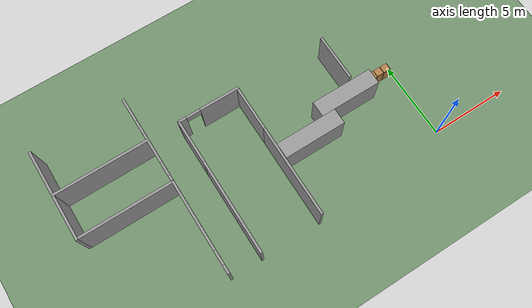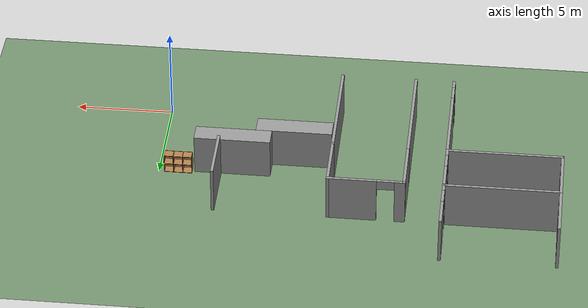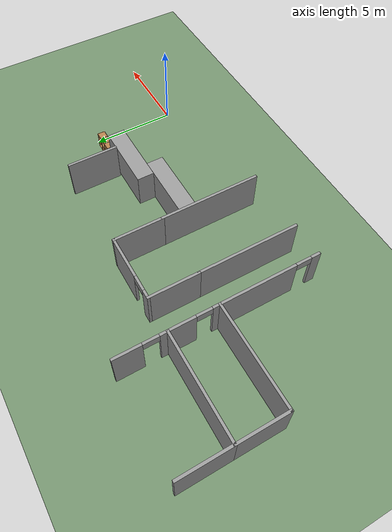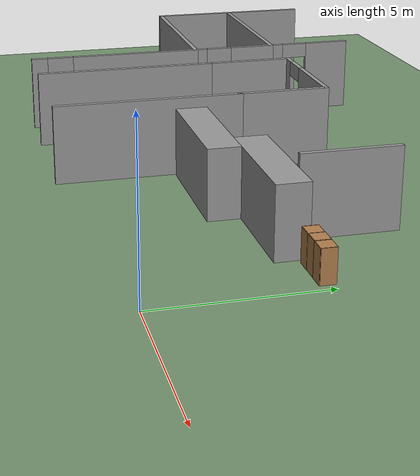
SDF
<sdf version="1.7">
 <world name="default">
  <model name="ground_plane">
   <static>1</static>
   <link name="link">
    <collision name="collision">
     <geometry><plane><normal>0 0 1</normal><size>600 600</size></plane></geometry>
     <surface>
      <contact><collide_bitmask>65535</collide_bitmask></contact>
      <friction><ode><mu>100</mu><mu2>50</mu2></ode></friction>
     </surface>
    </collision>
    <visual name="visual">
     <cast_shadows>0</cast_shadows>
     <geometry><plane><normal>0 0 1</normal><size>100 100</size></plane></geometry>
     <material><ambient>0.45 0.57 0.43 1</ambient><diffuse>0.45 0.57 0.43 1</diffuse></material>
    </visual>
   </link>
  </model>
  <model name="unit_box_clone_clone">
   <pose>-3.79883 4.41904 1.08892 -0 -0.000118 -0.002384</pose>
   <link name="link">
    <inertial>
     <mass>1</mass>
     <inertia>
      <ixx>0.166667</ixx>
      <ixy>0</ixy>
      <ixz>0</ixz>
      <iyy>0.166667</iyy>
      <iyz>0</iyz>
      <izz>0.166667</izz>
     </inertia>
    </inertial>
    <collision name="collision"><geometry><box><size>3.92499 1 2.1783</size></box></geometry></collision>
    <visual name="visual">
     <geometry><box><size>3.92499 1 2.1783</size></box></geometry>
     <material>
      <script><name>Gazebo/Grey</name><uri>file://media/materials/scripts/gazebo.material</uri></script>
     </material>
    </visual>
   </link>
  </model>
  <model name="unit_box_clone_clone_clone">
   <pose>-6.88792 3.42566 1.08892 0 0.000118 -0.002086</pose>
   <link name="link">
    <inertial>
     <mass>1</mass>
     <inertia>
      <ixx>0.166667</ixx>
      <ixy>0</ixy>
      <ixz>0</ixz>
      <iyy>0.166667</iyy>
      <iyz>0</iyz>
      <izz>0.166667</izz>
     </inertia>
    </inertial>
    <collision name="collision"><geometry><box><size>3.92499 1 2.1783</size></box></geometry></collision>
    <visual name="visual">
     <geometry><box><size>3.92499 1 2.1783</size></box></geometry>
     <material>
      <script><name>Gazebo/Grey</name><uri>file://media/materials/scripts/gazebo.material</uri></script>
     </material>
    </visual>
   </link>
  </model>
  <model name="myhal_V3_2">
   <link name="Wall_343">
    <pose>-20.475 7.2 0 0 0 -1.5708</pose>
    <visual name="Wall_343_Visual">
     <pose>0 0 1.25 0 -0 0</pose>
     <geometry><box><size>3 0.15 2.5</size></box></geometry>
     <material>
      <script><uri>file://media/materials/scripts/gazebo.material</uri><name>Gazebo/Grey</name></script>
      <ambient>1 1 1 1</ambient>
      <shader type="pixel"/>
     </material>
     <meta><layer>0</layer></meta>
    </visual>
    <collision name="Wall_343_Collision">
     <pose>0 0 1.25 0 -0 0</pose>
     <geometry><box><size>3 0.15 2.5</size></box></geometry>
     <surface>
      <friction>
       <ode><mu>1</mu><mu2>1</mu2><fdir1>0 0 0</fdir1><slip1>0</slip1><slip2>0</slip2></ode>
       <torsional>
        <coefficient>1</coefficient>
        <patch_radius>0</patch_radius>
        <surface_radius>0</surface_radius>
        <use_patch_radius>1</use_patch_radius>
        <ode><slip>0</slip></ode>
       </torsional>
      </friction>
      <bounce><restitution_coefficient>0</restitution_coefficient><threshold>1e+06</threshold></bounce>
      <contact>
       <collide_without_contact>0</collide_without_contact>
       <collide_without_contact_bitmask>1</collide_without_contact_bitmask>
       <collide_bitmask>1</collide_bitmask>
       <ode>
        <soft_cfm>0</soft_cfm>
        <soft_erp>0.2</soft_erp>
        <kp>1e+13</kp>
        <kd>1</kd>
        <max_vel>0.01</max_vel>
        <min_depth>0</min_depth>
       </ode>
       <bullet>
        <split_impulse>1</split_impulse>
        <split_impulse_penetration_threshold>-0.01</split_impulse_penetration_threshold>
        <soft_cfm>0</soft_cfm>
        <soft_erp>0.2</soft_erp>
        <kp>1e+13</kp>
        <kd>1</kd>
       </bullet>
      </contact>
     </surface>
    </collision>
   </link>
   <link name="Wall_344">
    <pose>-20.475 4.35 0 0 0 -1.5708</pose>
    <visual name="Wall_344_Visual">
     <pose>0 0 1.25 0 -0 0</pose>
     <geometry><box><size>3 0.15 2.5</size></box></geometry>
     <material>
      <script><uri>file://media/materials/scripts/gazebo.material</uri><name>Gazebo/Grey</name></script>
      <ambient>1 1 1 1</ambient>
      <shader type="pixel"/>
     </material>
     <meta><layer>0</layer></meta>
    </visual>
    <collision name="Wall_344_Collision">
     <pose>0 0 1.25 0 -0 0</pose>
     <geometry><box><size>3 0.15 2.5</size></box></geometry>
     <surface>
      <friction>
       <ode><mu>1</mu><mu2>1</mu2><fdir1>0 0 0</fdir1><slip1>0</slip1><slip2>0</slip2></ode>
       <torsional>
        <coefficient>1</coefficient>
        <patch_radius>0</patch_radius>
        <surface_radius>0</surface_radius>
        <use_patch_radius>1</use_patch_radius>
        <ode><slip>0</slip></ode>
       </torsional>
      </friction>
      <bounce><restitution_coefficient>0</restitution_coefficient><threshold>1e+06</threshold></bounce>
      <contact>
       <collide_without_contact>0</collide_without_contact>
       <collide_without_contact_bitmask>1</collide_without_contact_bitmask>
       <collide_bitmask>1</collide_bitmask>
       <ode>
        <soft_cfm>0</soft_cfm>
        <soft_erp>0.2</soft_erp>
        <kp>1e+13</kp>
        <kd>1</kd>
        <max_vel>0.01</max_vel>
        <min_depth>0</min_depth>
       </ode>
       <bullet>
        <split_impulse>1</split_impulse>
        <split_impulse_penetration_threshold>-0.01</split_impulse_penetration_threshold>
        <soft_cfm>0</soft_cfm>
        <soft_erp>0.2</soft_erp>
        <kp>1e+13</kp>
        <kd>1</kd>
       </bullet>
      </contact>
     </surface>
    </collision>
   </link>
   <link name="Wall_402">
    <pose>-14.625 7.2 0 0 0 -1.5708</pose>
    <visual name="Wall_402_Visual_0">
     <pose>-0.707028 0 1.25 0 -0 0</pose>
     <geometry><box><size>1.58594 0.15 2.5</size></box></geometry>
     <material>
      <script><uri>file://media/materials/scripts/gazebo.material</uri><name>Gazebo/Grey</name></script>
      <ambient>1 1 1 1</ambient>
      <shader type="pixel"/>
     </material>
     <meta><layer>0</layer></meta>
    </visual>
    <visual name="Wall_402_Visual_1">
     <pose>1.24297 0 1.25 0 -0 0</pose>
     <geometry><box><size>0.514056 0.15 2.5</size></box></geometry>
     <material>
      <script><uri>file://media/materials/scripts/gazebo.material</uri><name>Gazebo/Grey</name></script>
      <ambient>1 1 1 1</ambient>
      <shader type="pixel"/>
     </material>
     <meta><layer>0</layer></meta>
    </visual>
    <visual name="Wall_402_Visual_2">
     <pose>0.535944 0 2.25 0 -0 0</pose>
     <geometry><box><size>0.9 0.15 0.5</size></box></geometry>
     <material>
      <script><uri>file://media/materials/scripts/gazebo.material</uri><name>Gazebo/Grey</name></script>
      <ambient>1 1 1 1</ambient>
      <shader type="pixel"/>
     </material>
     <meta><layer>0</layer></meta>
    </visual>
    <collision name="Wall_402_Collision_0">
     <pose>-0.707028 0 1.25 0 -0 0</pose>
     <geometry><box><size>1.58594 0.15 2.5</size></box></geometry>
     <surface>
      <friction>
       <ode><mu>1</mu><mu2>1</mu2><fdir1>0 0 0</fdir1><slip1>0</slip1><slip2>0</slip2></ode>
       <torsional>
        <coefficient>1</coefficient>
        <patch_radius>0</patch_radius>
        <surface_radius>0</surface_radius>
        <use_patch_radius>1</use_patch_radius>
        <ode><slip>0</slip></ode>
       </torsional>
      </friction>
      <bounce><restitution_coefficient>0</restitution_coefficient><threshold>1e+06</threshold></bounce>
      <contact>
       <collide_without_contact>0</collide_without_contact>
       <collide_without_contact_bitmask>1</collide_without_contact_bitmask>
       <collide_bitmask>1</collide_bitmask>
       <ode>
        <soft_cfm>0</soft_cfm>
        <soft_erp>0.2</soft_erp>
        <kp>1e+13</kp>
        <kd>1</kd>
        <max_vel>0.01</max_vel>
        <min_depth>0</min_depth>
       </ode>
       <bullet>
        <split_impulse>1</split_impulse>
        <split_impulse_penetration_threshold>-0.01</split_impulse_penetration_threshold>
        <soft_cfm>0</soft_cfm>
        <soft_erp>0.2</soft_erp>
        <kp>1e+13</kp>
        <kd>1</kd>
       </bullet>
      </contact>
     </surface>
    </collision>
    <collision name="Wall_402_Collision_1">
     <pose>1.24297 0 1.25 0 -0 0</pose>
     <geometry><box><size>0.514056 0.15 2.5</size></box></geometry>
     <surface>
      <friction>
       <ode><mu>1</mu><mu2>1</mu2><fdir1>0 0 0</fdir1><slip1>0</slip1><slip2>0</slip2></ode>
       <torsional>
        <coefficient>1</coefficient>
        <patch_radius>0</patch_radius>
        <surface_radius>0</surface_radius>
        <use_patch_radius>1</use_patch_radius>
        <ode><slip>0</slip></ode>
       </torsional>
      </friction>
      <bounce><restitution_coefficient>0</restitution_coefficient><threshold>1e+06</threshold></bounce>
      <contact>
       <collide_without_contact>0</collide_without_contact>
       <collide_without_contact_bitmask>1</collide_without_contact_bitmask>
       <collide_bitmask>1</collide_bitmask>
       <ode>
        <soft_cfm>0</soft_cfm>
        <soft_erp>0.2</soft_erp>
        <kp>1e+13</kp>
        <kd>1</kd>
        <max_vel>0.01</max_vel>
        <min_depth>0</min_depth>
       </ode>
       <bullet>
        <split_impulse>1</split_impulse>
        <split_impulse_penetration_threshold>-0.01</split_impulse_penetration_threshold>
        <soft_cfm>0</soft_cfm>
        <soft_erp>0.2</soft_erp>
        <kp>1e+13</kp>
        <kd>1</kd>
       </bullet>
      </contact>
     </surface>
    </collision>
    <collision name="Wall_402_Collision_2">
     <pose>0.535944 0 2.25 0 -0 0</pose>
     <geometry><box><size>0.9 0.15 0.5</size></box></geometry>
     <surface>
      <friction>
       <ode><mu>1</mu><mu2>1</mu2><fdir1>0 0 0</fdir1><slip1>0</slip1><slip2>0</slip2></ode>
       <torsional>
        <coefficient>1</coefficient>
        <patch_radius>0</patch_radius>
        <surface_radius>0</surface_radius>
        <use_patch_radius>1</use_patch_radius>
        <ode><slip>0</slip></ode>
       </torsional>
      </friction>
      <bounce><restitution_coefficient>0</restitution_coefficient><threshold>1e+06</threshold></bounce>
      <contact>
       <collide_without_contact>0</collide_without_contact>
       <collide_without_contact_bitmask>1</collide_without_contact_bitmask>
       <collide_bitmask>1</collide_bitmask>
       <ode>
        <soft_cfm>0</soft_cfm>
        <soft_erp>0.2</soft_erp>
        <kp>1e+13</kp>
        <kd>1</kd>
        <max_vel>0.01</max_vel>
        <min_depth>0</min_depth>
       </ode>
       <bullet>
        <split_impulse>1</split_impulse>
        <split_impulse_penetration_threshold>-0.01</split_impulse_penetration_threshold>
        <soft_cfm>0</soft_cfm>
        <soft_erp>0.2</soft_erp>
        <kp>1e+13</kp>
        <kd>1</kd>
       </bullet>
      </contact>
     </surface>
    </collision>
   </link>
   <link name="Wall_403">
    <pose>-17.55 5.775 0 0 -0 3.14159</pose>
    <visual name="Wall_403_Visual">
     <pose>0 0 1.25 0 -0 0</pose>
     <geometry><box><size>6 0.15 2.5</size></box></geometry>
     <material>
      <script><uri>file://media/materials/scripts/gazebo.material</uri><name>Gazebo/Grey</name></script>
      <ambient>1 1 1 1</ambient>
      <shader type="pixel"/>
     </material>
     <meta><layer>0</layer></meta>
    </visual>
    <collision name="Wall_403_Collision">
     <pose>0 0 1.25 0 -0 0</pose>
     <geometry><box><size>6 0.15 2.5</size></box></geometry>
     <surface>
      <friction>
       <ode><mu>1</mu><mu2>1</mu2><fdir1>0 0 0</fdir1><slip1>0</slip1><slip2>0</slip2></ode>
       <torsional>
        <coefficient>1</coefficient>
        <patch_radius>0</patch_radius>
        <surface_radius>0</surface_radius>
        <use_patch_radius>1</use_patch_radius>
        <ode><slip>0</slip></ode>
       </torsional>
      </friction>
      <bounce><restitution_coefficient>0</restitution_coefficient><threshold>1e+06</threshold></bounce>
      <contact>
       <collide_without_contact>0</collide_without_contact>
       <collide_without_contact_bitmask>1</collide_without_contact_bitmask>
       <collide_bitmask>1</collide_bitmask>
       <ode>
        <soft_cfm>0</soft_cfm>
        <soft_erp>0.2</soft_erp>
        <kp>1e+13</kp>
        <kd>1</kd>
        <max_vel>0.01</max_vel>
        <min_depth>0</min_depth>
       </ode>
       <bullet>
        <split_impulse>1</split_impulse>
        <split_impulse_penetration_threshold>-0.01</split_impulse_penetration_threshold>
        <soft_cfm>0</soft_cfm>
        <soft_erp>0.2</soft_erp>
        <kp>1e+13</kp>
        <kd>1</kd>
       </bullet>
      </contact>
     </surface>
    </collision>
   </link>
   <link name="Wall_405">
    <pose>-14.625 4.35 0 0 0 -1.5708</pose>
    <visual name="Wall_405_Visual_0">
     <pose>-0.698064 0 1.25 0 -0 0</pose>
     <geometry><box><size>1.60387 0.15 2.5</size></box></geometry>
     <material>
      <script><uri>file://media/materials/scripts/gazebo.material</uri><name>Gazebo/Grey</name></script>
      <ambient>1 1 1 1</ambient>
      <shader type="pixel"/>
     </material>
     <meta><layer>0</layer></meta>
    </visual>
    <visual name="Wall_405_Visual_1">
     <pose>1.25194 0 1.25 0 -0 0</pose>
     <geometry><box><size>0.496128 0.15 2.5</size></box></geometry>
     <material>
      <script><uri>file://media/materials/scripts/gazebo.material</uri><name>Gazebo/Grey</name></script>
      <ambient>1 1 1 1</ambient>
      <shader type="pixel"/>
     </material>
     <meta><layer>0</layer></meta>
    </visual>
    <visual name="Wall_405_Visual_2">
     <pose>0.553872 0 2.25 0 -0 0</pose>
     <geometry><box><size>0.9 0.15 0.5</size></box></geometry>
     <material>
      <script><uri>file://media/materials/scripts/gazebo.material</uri><name>Gazebo/Grey</name></script>
      <ambient>1 1 1 1</ambient>
      <shader type="pixel"/>
     </material>
     <meta><layer>0</layer></meta>
    </visual>
    <collision name="Wall_405_Collision_0">
     <pose>-0.698064 0 1.25 0 -0 0</pose>
     <geometry><box><size>1.60387 0.15 2.5</size></box></geometry>
     <surface>
      <friction>
       <ode><mu>1</mu><mu2>1</mu2><fdir1>0 0 0</fdir1><slip1>0</slip1><slip2>0</slip2></ode>
       <torsional>
        <coefficient>1</coefficient>
        <patch_radius>0</patch_radius>
        <surface_radius>0</surface_radius>
        <use_patch_radius>1</use_patch_radius>
        <ode><slip>0</slip></ode>
       </torsional>
      </friction>
      <bounce><restitution_coefficient>0</restitution_coefficient><threshold>1e+06</threshold></bounce>
      <contact>
       <collide_without_contact>0</collide_without_contact>
       <collide_without_contact_bitmask>1</collide_without_contact_bitmask>
       <collide_bitmask>1</collide_bitmask>
       <ode>
        <soft_cfm>0</soft_cfm>
        <soft_erp>0.2</soft_erp>
        <kp>1e+13</kp>
        <kd>1</kd>
        <max_vel>0.01</max_vel>
        <min_depth>0</min_depth>
       </ode>
       <bullet>
        <split_impulse>1</split_impulse>
        <split_impulse_penetration_threshold>-0.01</split_impulse_penetration_threshold>
        <soft_cfm>0</soft_cfm>
        <soft_erp>0.2</soft_erp>
        <kp>1e+13</kp>
        <kd>1</kd>
       </bullet>
      </contact>
     </surface>
    </collision>
    <collision name="Wall_405_Collision_1">
     <pose>1.25194 0 1.25 0 -0 0</pose>
     <geometry><box><size>0.496128 0.15 2.5</size></box></geometry>
     <surface>
      <friction>
       <ode><mu>1</mu><mu2>1</mu2><fdir1>0 0 0</fdir1><slip1>0</slip1><slip2>0</slip2></ode>
       <torsional>
        <coefficient>1</coefficient>
        <patch_radius>0</patch_radius>
        <surface_radius>0</surface_radius>
        <use_patch_radius>1</use_patch_radius>
        <ode><slip>0</slip></ode>
       </torsional>
      </friction>
      <bounce><restitution_coefficient>0</restitution_coefficient><threshold>1e+06</threshold></bounce>
      <contact>
       <collide_without_contact>0</collide_without_contact>
       <collide_without_contact_bitmask>1</collide_without_contact_bitmask>
       <collide_bitmask>1</collide_bitmask>
       <ode>
        <soft_cfm>0</soft_cfm>
        <soft_erp>0.2</soft_erp>
        <kp>1e+13</kp>
        <kd>1</kd>
        <max_vel>0.01</max_vel>
        <min_depth>0</min_depth>
       </ode>
       <bullet>
        <split_impulse>1</split_impulse>
        <split_impulse_penetration_threshold>-0.01</split_impulse_penetration_threshold>
        <soft_cfm>0</soft_cfm>
        <soft_erp>0.2</soft_erp>
        <kp>1e+13</kp>
        <kd>1</kd>
       </bullet>
      </contact>
     </surface>
    </collision>
    <collision name="Wall_405_Collision_2">
     <pose>0.553872 0 2.25 0 -0 0</pose>
     <geometry><box><size>0.9 0.15 0.5</size></box></geometry>
     <surface>
      <friction>
       <ode><mu>1</mu><mu2>1</mu2><fdir1>0 0 0</fdir1><slip1>0</slip1><slip2>0</slip2></ode>
       <torsional>
        <coefficient>1</coefficient>
        <patch_radius>0</patch_radius>
        <surface_radius>0</surface_radius>
        <use_patch_radius>1</use_patch_radius>
        <ode><slip>0</slip></ode>
       </torsional>
      </friction>
      <bounce><restitution_coefficient>0</restitution_coefficient><threshold>1e+06</threshold></bounce>
      <contact>
       <collide_without_contact>0</collide_without_contact>
       <collide_without_contact_bitmask>1</collide_without_contact_bitmask>
       <collide_bitmask>1</collide_bitmask>
       <ode>
        <soft_cfm>0</soft_cfm>
        <soft_erp>0.2</soft_erp>
        <kp>1e+13</kp>
        <kd>1</kd>
        <max_vel>0.01</max_vel>
        <min_depth>0</min_depth>
       </ode>
       <bullet>
        <split_impulse>1</split_impulse>
        <split_impulse_penetration_threshold>-0.01</split_impulse_penetration_threshold>
        <soft_cfm>0</soft_cfm>
        <soft_erp>0.2</soft_erp>
        <kp>1e+13</kp>
        <kd>1</kd>
       </bullet>
      </contact>
     </surface>
    </collision>
   </link>
   <link name="Wall_406">
    <pose>-17.55 2.925 0 0 -0 3.14159</pose>
    <visual name="Wall_406_Visual">
     <pose>0 0 1.25 0 -0 0</pose>
     <geometry><box><size>6 0.15 2.5</size></box></geometry>
     <material>
      <script><uri>file://media/materials/scripts/gazebo.material</uri><name>Gazebo/Grey</name></script>
      <ambient>1 1 1 1</ambient>
      <shader type="pixel"/>
     </material>
     <meta><layer>0</layer></meta>
    </visual>
    <collision name="Wall_406_Collision">
     <pose>0 0 1.25 0 -0 0</pose>
     <geometry><box><size>6 0.15 2.5</size></box></geometry>
     <surface>
      <friction>
       <ode><mu>1</mu><mu2>1</mu2><fdir1>0 0 0</fdir1><slip1>0</slip1><slip2>0</slip2></ode>
       <torsional>
        <coefficient>1</coefficient>
        <patch_radius>0</patch_radius>
        <surface_radius>0</surface_radius>
        <use_patch_radius>1</use_patch_radius>
        <ode><slip>0</slip></ode>
       </torsional>
      </friction>
      <bounce><restitution_coefficient>0</restitution_coefficient><threshold>1e+06</threshold></bounce>
      <contact>
       <collide_without_contact>0</collide_without_contact>
       <collide_without_contact_bitmask>1</collide_without_contact_bitmask>
       <collide_bitmask>1</collide_bitmask>
       <ode>
        <soft_cfm>0</soft_cfm>
        <soft_erp>0.2</soft_erp>
        <kp>1e+13</kp>
        <kd>1</kd>
        <max_vel>0.01</max_vel>
        <min_depth>0</min_depth>
       </ode>
       <bullet>
        <split_impulse>1</split_impulse>
        <split_impulse_penetration_threshold>-0.01</split_impulse_penetration_threshold>
        <soft_cfm>0</soft_cfm>
        <soft_erp>0.2</soft_erp>
        <kp>1e+13</kp>
        <kd>1</kd>
       </bullet>
      </contact>
     </surface>
    </collision>
   </link>
   <link name="Wall_408">
    <pose>-14.625 0 0 0 0 -1.5708</pose>
    <visual name="Wall_408_Visual_0">
     <pose>-0.728079 0 1.25 0 -0 0</pose>
     <geometry><box><size>4.54384 0.15 2.5</size></box></geometry>
     <material>
      <script><uri>file://media/materials/scripts/gazebo.material</uri><name>Gazebo/Grey</name></script>
      <ambient>1 1 1 1</ambient>
      <shader type="pixel"/>
     </material>
     <meta><layer>0</layer></meta>
    </visual>
    <visual name="Wall_408_Visual_1">
     <pose>2.72192 0 1.25 0 -0 0</pose>
     <geometry><box><size>0.556159 0.15 2.5</size></box></geometry>
     <material>
      <script><uri>file://media/materials/scripts/gazebo.material</uri><name>Gazebo/Grey</name></script>
      <ambient>1 1 1 1</ambient>
      <shader type="pixel"/>
     </material>
     <meta><layer>0</layer></meta>
    </visual>
    <visual name="Wall_408_Visual_2">
     <pose>1.99384 0 2.25 0 -0 0</pose>
     <geometry><box><size>0.9 0.15 0.5</size></box></geometry>
     <material>
      <script><uri>file://media/materials/scripts/gazebo.material</uri><name>Gazebo/Grey</name></script>
      <ambient>1 1 1 1</ambient>
      <shader type="pixel"/>
     </material>
     <meta><layer>0</layer></meta>
    </visual>
    <collision name="Wall_408_Collision_0">
     <pose>-0.728079 0 1.25 0 -0 0</pose>
     <geometry><box><size>4.54384 0.15 2.5</size></box></geometry>
     <surface>
      <friction>
       <ode><mu>1</mu><mu2>1</mu2><fdir1>0 0 0</fdir1><slip1>0</slip1><slip2>0</slip2></ode>
       <torsional>
        <coefficient>1</coefficient>
        <patch_radius>0</patch_radius>
        <surface_radius>0</surface_radius>
        <use_patch_radius>1</use_patch_radius>
        <ode><slip>0</slip></ode>
       </torsional>
      </friction>
      <bounce><restitution_coefficient>0</restitution_coefficient><threshold>1e+06</threshold></bounce>
      <contact>
       <collide_without_contact>0</collide_without_contact>
       <collide_without_contact_bitmask>1</collide_without_contact_bitmask>
       <collide_bitmask>1</collide_bitmask>
       <ode>
        <soft_cfm>0</soft_cfm>
        <soft_erp>0.2</soft_erp>
        <kp>1e+13</kp>
        <kd>1</kd>
        <max_vel>0.01</max_vel>
        <min_depth>0</min_depth>
       </ode>
       <bullet>
        <split_impulse>1</split_impulse>
        <split_impulse_penetration_threshold>-0.01</split_impulse_penetration_threshold>
        <soft_cfm>0</soft_cfm>
        <soft_erp>0.2</soft_erp>
        <kp>1e+13</kp>
        <kd>1</kd>
       </bullet>
      </contact>
     </surface>
    </collision>
    <collision name="Wall_408_Collision_1">
     <pose>2.72192 0 1.25 0 -0 0</pose>
     <geometry><box><size>0.556159 0.15 2.5</size></box></geometry>
     <surface>
      <friction>
       <ode><mu>1</mu><mu2>1</mu2><fdir1>0 0 0</fdir1><slip1>0</slip1><slip2>0</slip2></ode>
       <torsional>
        <coefficient>1</coefficient>
        <patch_radius>0</patch_radius>
        <surface_radius>0</surface_radius>
        <use_patch_radius>1</use_patch_radius>
        <ode><slip>0</slip></ode>
       </torsional>
      </friction>
      <bounce><restitution_coefficient>0</restitution_coefficient><threshold>1e+06</threshold></bounce>
      <contact>
       <collide_without_contact>0</collide_without_contact>
       <collide_without_contact_bitmask>1</collide_without_contact_bitmask>
       <collide_bitmask>1</collide_bitmask>
       <ode>
        <soft_cfm>0</soft_cfm>
        <soft_erp>0.2</soft_erp>
        <kp>1e+13</kp>
        <kd>1</kd>
        <max_vel>0.01</max_vel>
        <min_depth>0</min_depth>
       </ode>
       <bullet>
        <split_impulse>1</split_impulse>
        <split_impulse_penetration_threshold>-0.01</split_impulse_penetration_threshold>
        <soft_cfm>0</soft_cfm>
        <soft_erp>0.2</soft_erp>
        <kp>1e+13</kp>
        <kd>1</kd>
       </bullet>
      </contact>
     </surface>
    </collision>
    <collision name="Wall_408_Collision_2">
     <pose>1.99384 0 2.25 0 -0 0</pose>
     <geometry><box><size>0.9 0.15 0.5</size></box></geometry>
     <surface>
      <friction>
       <ode><mu>1</mu><mu2>1</mu2><fdir1>0 0 0</fdir1><slip1>0</slip1><slip2>0</slip2></ode>
       <torsional>
        <coefficient>1</coefficient>
        <patch_radius>0</patch_radius>
        <surface_radius>0</surface_radius>
        <use_patch_radius>1</use_patch_radius>
        <ode><slip>0</slip></ode>
       </torsional>
      </friction>
      <bounce><restitution_coefficient>0</restitution_coefficient><threshold>1e+06</threshold></bounce>
      <contact>
       <collide_without_contact>0</collide_without_contact>
       <collide_without_contact_bitmask>1</collide_without_contact_bitmask>
       <collide_bitmask>1</collide_bitmask>
       <ode>
        <soft_cfm>0</soft_cfm>
        <soft_erp>0.2</soft_erp>
        <kp>1e+13</kp>
        <kd>1</kd>
        <max_vel>0.01</max_vel>
        <min_depth>0</min_depth>
       </ode>
       <bullet>
        <split_impulse>1</split_impulse>
        <split_impulse_penetration_threshold>-0.01</split_impulse_penetration_threshold>
        <soft_cfm>0</soft_cfm>
        <soft_erp>0.2</soft_erp>
        <kp>1e+13</kp>
        <kd>1</kd>
       </bullet>
      </contact>
     </surface>
    </collision>
   </link>
   <link name="Wall_439">
    <pose>-10.7 5.775 0 0 -0 3.14159</pose>
    <visual name="Wall_439_Visual_0">
     <pose>-0.724975 0 1.25 0 -0 0</pose>
     <geometry><box><size>2.55005 0.15 2.5</size></box></geometry>
     <material>
      <script><uri>file://media/materials/scripts/gazebo.material</uri><name>Gazebo/Grey</name></script>
      <ambient>1 1 1 1</ambient>
      <shader type="pixel"/>
     </material>
     <meta><layer>0</layer></meta>
    </visual>
    <visual name="Wall_439_Visual_1">
     <pose>1.72503 0 1.25 0 -0 0</pose>
     <geometry><box><size>0.549949 0.15 2.5</size></box></geometry>
     <material>
      <script><uri>file://media/materials/scripts/gazebo.material</uri><name>Gazebo/Grey</name></script>
      <ambient>1 1 1 1</ambient>
      <shader type="pixel"/>
     </material>
     <meta><layer>0</layer></meta>
    </visual>
    <visual name="Wall_439_Visual_2">
     <pose>1.00005 0 2.25 0 -0 0</pose>
     <geometry><box><size>0.9 0.15 0.5</size></box></geometry>
     <material>
      <script><uri>file://media/materials/scripts/gazebo.material</uri><name>Gazebo/Grey</name></script>
      <ambient>1 1 1 1</ambient>
      <shader type="pixel"/>
     </material>
     <meta><layer>0</layer></meta>
    </visual>
    <collision name="Wall_439_Collision_0">
     <pose>-0.724975 0 1.25 0 -0 0</pose>
     <geometry><box><size>2.55005 0.15 2.5</size></box></geometry>
     <surface>
      <friction>
       <ode><mu>1</mu><mu2>1</mu2><fdir1>0 0 0</fdir1><slip1>0</slip1><slip2>0</slip2></ode>
       <torsional>
        <coefficient>1</coefficient>
        <patch_radius>0</patch_radius>
        <surface_radius>0</surface_radius>
        <use_patch_radius>1</use_patch_radius>
        <ode><slip>0</slip></ode>
       </torsional>
      </friction>
      <bounce><restitution_coefficient>0</restitution_coefficient><threshold>1e+06</threshold></bounce>
      <contact>
       <collide_without_contact>0</collide_without_contact>
       <collide_without_contact_bitmask>1</collide_without_contact_bitmask>
       <collide_bitmask>1</collide_bitmask>
       <ode>
        <soft_cfm>0</soft_cfm>
        <soft_erp>0.2</soft_erp>
        <kp>1e+13</kp>
        <kd>1</kd>
        <max_vel>0.01</max_vel>
        <min_depth>0</min_depth>
       </ode>
       <bullet>
        <split_impulse>1</split_impulse>
        <split_impulse_penetration_threshold>-0.01</split_impulse_penetration_threshold>
        <soft_cfm>0</soft_cfm>
        <soft_erp>0.2</soft_erp>
        <kp>1e+13</kp>
        <kd>1</kd>
       </bullet>
      </contact>
     </surface>
    </collision>
    <collision name="Wall_439_Collision_2">
     <pose>1.00005 0 2.25 0 -0 0</pose>
     <geometry><box><size>0.9 0.15 0.5</size></box></geometry>
     <surface>
      <friction>
       <ode><mu>1</mu><mu2>1</mu2><fdir1>0 0 0</fdir1><slip1>0</slip1><slip2>0</slip2></ode>
       <torsional>
        <coefficient>1</coefficient>
        <patch_radius>0</patch_radius>
        <surface_radius>0</surface_radius>
        <use_patch_radius>1</use_patch_radius>
        <ode><slip>0</slip></ode>
       </torsional>
      </friction>
      <bounce><restitution_coefficient>0</restitution_coefficient><threshold>1e+06</threshold></bounce>
      <contact>
       <collide_without_contact>0</collide_without_contact>
       <collide_without_contact_bitmask>1</collide_without_contact_bitmask>
       <collide_bitmask>1</collide_bitmask>
       <ode>
        <soft_cfm>0</soft_cfm>
        <soft_erp>0.2</soft_erp>
        <kp>1e+13</kp>
        <kd>1</kd>
        <max_vel>0.01</max_vel>
        <min_depth>0</min_depth>
       </ode>
       <bullet>
        <split_impulse>1</split_impulse>
        <split_impulse_penetration_threshold>-0.01</split_impulse_penetration_threshold>
        <soft_cfm>0</soft_cfm>
        <soft_erp>0.2</soft_erp>
        <kp>1e+13</kp>
        <kd>1</kd>
       </bullet>
      </contact>
     </surface>
    </collision>
    <collision name="Wall_439_Collision_1">
     <pose>1.72503 0 1.25 0 -0 0</pose>
     <geometry><box><size>0.549949 0.15 2.5</size></box></geometry>
     <surface>
      <friction>
       <ode><mu>1</mu><mu2>1</mu2><fdir1>0 0 0</fdir1><slip1>0</slip1><slip2>0</slip2></ode>
       <torsional>
        <coefficient>1</coefficient>
        <patch_radius>0</patch_radius>
        <surface_radius>0</surface_radius>
        <use_patch_radius>1</use_patch_radius>
        <ode><slip>0</slip></ode>
       </torsional>
      </friction>
      <bounce><restitution_coefficient>0</restitution_coefficient><threshold>1e+06</threshold></bounce>
      <contact>
       <collide_without_contact>0</collide_without_contact>
       <collide_without_contact_bitmask>1</collide_without_contact_bitmask>
       <collide_bitmask>1</collide_bitmask>
       <ode>
        <soft_cfm>0</soft_cfm>
        <soft_erp>0.2</soft_erp>
        <kp>1e+13</kp>
        <kd>1</kd>
        <max_vel>0.01</max_vel>
        <min_depth>0</min_depth>
       </ode>
       <bullet>
        <split_impulse>1</split_impulse>
        <split_impulse_penetration_threshold>-0.01</split_impulse_penetration_threshold>
        <soft_cfm>0</soft_cfm>
        <soft_erp>0.2</soft_erp>
        <kp>1e+13</kp>
        <kd>1</kd>
       </bullet>
      </contact>
     </surface>
    </collision>
   </link>
   <link name="Wall_441">
    <pose>-12.625 4.35 0 0 0 -1.5708</pose>
    <visual name="Wall_441_Visual">
     <pose>0 0 1.25 0 -0 0</pose>
     <geometry><box><size>3 0.15 2.5</size></box></geometry>
     <material>
      <script><uri>file://media/materials/scripts/gazebo.material</uri><name>Gazebo/Grey</name></script>
      <ambient>1 1 1 1</ambient>
      <shader type="pixel"/>
     </material>
     <meta><layer>0</layer></meta>
    </visual>
    <collision name="Wall_441_Collision">
     <pose>0 0 1.25 0 -0 0</pose>
     <geometry><box><size>3 0.15 2.5</size></box></geometry>
     <surface>
      <friction>
       <ode><mu>1</mu><mu2>1</mu2><fdir1>0 0 0</fdir1><slip1>0</slip1><slip2>0</slip2></ode>
       <torsional>
        <coefficient>1</coefficient>
        <patch_radius>0</patch_radius>
        <surface_radius>0</surface_radius>
        <use_patch_radius>1</use_patch_radius>
        <ode><slip>0</slip></ode>
       </torsional>
      </friction>
      <bounce><restitution_coefficient>0</restitution_coefficient><threshold>1e+06</threshold></bounce>
      <contact>
       <collide_without_contact>0</collide_without_contact>
       <collide_without_contact_bitmask>1</collide_without_contact_bitmask>
       <collide_bitmask>1</collide_bitmask>
       <ode>
        <soft_cfm>0</soft_cfm>
        <soft_erp>0.2</soft_erp>
        <kp>1e+13</kp>
        <kd>1</kd>
        <max_vel>0.01</max_vel>
        <min_depth>0</min_depth>
       </ode>
       <bullet>
        <split_impulse>1</split_impulse>
        <split_impulse_penetration_threshold>-0.01</split_impulse_penetration_threshold>
        <soft_cfm>0</soft_cfm>
        <soft_erp>0.2</soft_erp>
        <kp>1e+13</kp>
        <kd>1</kd>
       </bullet>
      </contact>
     </surface>
    </collision>
   </link>
   <link name="Wall_442">
    <pose>-12.625 0 0 0 0 -1.5708</pose>
    <visual name="Wall_442_Visual">
     <pose>0 0 1.25 0 -0 0</pose>
     <geometry><box><size>6 0.15 2.5</size></box></geometry>
     <material>
      <script><uri>file://media/materials/scripts/gazebo.material</uri><name>Gazebo/Grey</name></script>
      <ambient>1 1 1 1</ambient>
      <shader type="pixel"/>
     </material>
     <meta><layer>0</layer></meta>
    </visual>
    <collision name="Wall_442_Collision">
     <pose>0 0 1.25 0 -0 0</pose>
     <geometry><box><size>6 0.15 2.5</size></box></geometry>
     <surface>
      <friction>
       <ode><mu>1</mu><mu2>1</mu2><fdir1>0 0 0</fdir1><slip1>0</slip1><slip2>0</slip2></ode>
       <torsional>
        <coefficient>1</coefficient>
        <patch_radius>0</patch_radius>
        <surface_radius>0</surface_radius>
        <use_patch_radius>1</use_patch_radius>
        <ode><slip>0</slip></ode>
       </torsional>
      </friction>
      <bounce><restitution_coefficient>0</restitution_coefficient><threshold>1e+06</threshold></bounce>
      <contact>
       <collide_without_contact>0</collide_without_contact>
       <collide_without_contact_bitmask>1</collide_without_contact_bitmask>
       <collide_bitmask>1</collide_bitmask>
       <ode>
        <soft_cfm>0</soft_cfm>
        <soft_erp>0.2</soft_erp>
        <kp>1e+13</kp>
        <kd>1</kd>
        <max_vel>0.01</max_vel>
        <min_depth>0</min_depth>
       </ode>
       <bullet>
        <split_impulse>1</split_impulse>
        <split_impulse_penetration_threshold>-0.01</split_impulse_penetration_threshold>
        <soft_cfm>0</soft_cfm>
        <soft_erp>0.2</soft_erp>
        <kp>1e+13</kp>
        <kd>1</kd>
       </bullet>
      </contact>
     </surface>
    </collision>
   </link>
   <link name="Wall_447">
    <pose>-8.775 4.35 0 0 0 -1.5708</pose>
    <visual name="Wall_447_Visual">
     <pose>0 0 1.25 0 -0 0</pose>
     <geometry><box><size>3 0.15 2.5</size></box></geometry>
     <material>
      <script><uri>file://media/materials/scripts/gazebo.material</uri><name>Gazebo/Grey</name></script>
      <ambient>1 1 1 1</ambient>
      <shader type="pixel"/>
     </material>
     <meta><layer>0</layer></meta>
    </visual>
    <collision name="Wall_447_Collision">
     <pose>0 0 1.25 0 -0 0</pose>
     <geometry><box><size>3 0.15 2.5</size></box></geometry>
     <surface>
      <friction>
       <ode><mu>1</mu><mu2>1</mu2><fdir1>0 0 0</fdir1><slip1>0</slip1><slip2>0</slip2></ode>
       <torsional>
        <coefficient>1</coefficient>
        <patch_radius>0</patch_radius>
        <surface_radius>0</surface_radius>
        <use_patch_radius>1</use_patch_radius>
        <ode><slip>0</slip></ode>
       </torsional>
      </friction>
      <bounce><restitution_coefficient>0</restitution_coefficient><threshold>1e+06</threshold></bounce>
      <contact>
       <collide_without_contact>0</collide_without_contact>
       <collide_without_contact_bitmask>1</collide_without_contact_bitmask>
       <collide_bitmask>1</collide_bitmask>
       <ode>
        <soft_cfm>0</soft_cfm>
        <soft_erp>0.2</soft_erp>
        <kp>1e+13</kp>
        <kd>1</kd>
        <max_vel>0.01</max_vel>
        <min_depth>0</min_depth>
       </ode>
       <bullet>
        <split_impulse>1</split_impulse>
        <split_impulse_penetration_threshold>-0.01</split_impulse_penetration_threshold>
        <soft_cfm>0</soft_cfm>
        <soft_erp>0.2</soft_erp>
        <kp>1e+13</kp>
        <kd>1</kd>
       </bullet>
      </contact>
     </surface>
    </collision>
   </link>
   <link name="Wall_448">
    <pose>-8.775 0 0 0 0 -1.5708</pose>
    <visual name="Wall_448_Visual">
     <pose>0 0 1.25 0 -0 0</pose>
     <geometry><box><size>6 0.15 2.5</size></box></geometry>
     <material>
      <script><uri>file://media/materials/scripts/gazebo.material</uri><name>Gazebo/Grey</name></script>
      <ambient>1 1 1 1</ambient>
      <shader type="pixel"/>
     </material>
     <meta><layer>0</layer></meta>
    </visual>
    <collision name="Wall_448_Collision">
     <pose>0 0 1.25 0 -0 0</pose>
     <geometry><box><size>6 0.15 2.5</size></box></geometry>
     <surface>
      <friction>
       <ode><mu>1</mu><mu2>1</mu2><fdir1>0 0 0</fdir1><slip1>0</slip1><slip2>0</slip2></ode>
       <torsional>
        <coefficient>1</coefficient>
        <patch_radius>0</patch_radius>
        <surface_radius>0</surface_radius>
        <use_patch_radius>1</use_patch_radius>
        <ode><slip>0</slip></ode>
       </torsional>
      </friction>
      <bounce><restitution_coefficient>0</restitution_coefficient><threshold>1e+06</threshold></bounce>
      <contact>
       <collide_without_contact>0</collide_without_contact>
       <collide_without_contact_bitmask>1</collide_without_contact_bitmask>
       <collide_bitmask>1</collide_bitmask>
       <ode>
        <soft_cfm>0</soft_cfm>
        <soft_erp>0.2</soft_erp>
        <kp>1e+13</kp>
        <kd>1</kd>
        <max_vel>0.01</max_vel>
        <min_depth>0</min_depth>
       </ode>
       <bullet>
        <split_impulse>1</split_impulse>
        <split_impulse_penetration_threshold>-0.01</split_impulse_penetration_threshold>
        <soft_cfm>0</soft_cfm>
        <soft_erp>0.2</soft_erp>
        <kp>1e+13</kp>
        <kd>1</kd>
       </bullet>
      </contact>
     </surface>
    </collision>
   </link>
   <link name="Wall_501">
    <pose>-2.925 4.35 0 0 0 -1.5708</pose>
    <visual name="Wall_501_Visual">
     <pose>0 0 1.25 0 -0 0</pose>
     <geometry><box><size>3 0.15 2.5</size></box></geometry>
     <material>
      <script><uri>file://media/materials/scripts/gazebo.material</uri><name>Gazebo/Grey</name></script>
      <ambient>1 1 1 1</ambient>
      <shader type="pixel"/>
     </material>
     <meta><layer>0</layer></meta>
    </visual>
    <collision name="Wall_501_Collision">
     <pose>0 0 1.25 0 -0 0</pose>
     <geometry><box><size>3 0.15 2.5</size></box></geometry>
     <surface>
      <friction>
       <ode><mu>1</mu><mu2>1</mu2><fdir1>0 0 0</fdir1><slip1>0</slip1><slip2>0</slip2></ode>
       <torsional>
        <coefficient>1</coefficient>
        <patch_radius>0</patch_radius>
        <surface_radius>0</surface_radius>
        <use_patch_radius>1</use_patch_radius>
        <ode><slip>0</slip></ode>
       </torsional>
      </friction>
      <bounce><restitution_coefficient>0</restitution_coefficient><threshold>1e+06</threshold></bounce>
      <contact>
       <collide_without_contact>0</collide_without_contact>
       <collide_without_contact_bitmask>1</collide_without_contact_bitmask>
       <collide_bitmask>1</collide_bitmask>
       <ode>
        <soft_cfm>0</soft_cfm>
        <soft_erp>0.2</soft_erp>
        <kp>1e+13</kp>
        <kd>1</kd>
        <max_vel>0.01</max_vel>
        <min_depth>0</min_depth>
       </ode>
       <bullet>
        <split_impulse>1</split_impulse>
        <split_impulse_penetration_threshold>-0.01</split_impulse_penetration_threshold>
        <soft_cfm>0</soft_cfm>
        <soft_erp>0.2</soft_erp>
        <kp>1e+13</kp>
        <kd>1</kd>
       </bullet>
      </contact>
     </surface>
    </collision>
   </link>
   <model name="cabinet">
    <static>1</static>
    <link name="cabinet_bottom_plate">
     <inertial>
      <pose>0 0 -1 0 -0 0</pose>
      <inertia><ixx>2.05</ixx><ixy>0</ixy><ixz>0</ixz><iyy>2.05</iyy><iyz>0</iyz><izz>2.05</izz></inertia>
      <mass>25</mass>
     </inertial>
     <collision name="cabinet_bottom_plate_geom">
      <pose>0 0 0.01 0 -0 0</pose>
      <geometry><box><size>0.45 0.45 0.02</size></box></geometry>
     </collision>
     <visual name="cabinet_bottom_plate_geom_visual">
      <pose>0 0 0.01 0 -0 0</pose>
      <geometry><box><size>0.45 0.45 0.02</size></box></geometry>
      <material>
       <script><uri>file://media/materials/scripts/gazebo.material</uri><name>Gazebo/Wood</name></script>
      </material>
     </visual>
     <collision name="cabinet_bottom_plate_geom_cabinet_back_plate">
      <pose>0.235 0 0.51 0 -0 0</pose>
      <geometry><box><size>0.02 0.45 1.02</size></box></geometry>
     </collision>
     <visual name="cabinet_bottom_plate_geom_cabinet_back_plate_visual">
      <pose>0.235 0 0.51 0 -0 0</pose>
      <geometry><box><size>0.02 0.45 1.02</size></box></geometry>
      <material>
       <script><uri>file://media/materials/scripts/gazebo.material</uri><name>Gazebo/Wood</name></script>
      </material>
     </visual>
     <collision name="cabinet_bottom_plate_geom_cabinet_left_plate">
      <pose>0 0.235 0.51 0 -0 0</pose>
      <geometry><box><size>0.45 0.02 1.02</size></box></geometry>
     </collision>
     <visual name="cabinet_bottom_plate_geom_cabinet_left_plate_visual">
      <pose>0 0.235 0.51 0 -0 0</pose>
      <geometry><box><size>0.45 0.02 1.02</size></box></geometry>
      <material>
       <script><uri>file://media/materials/scripts/gazebo.material</uri><name>Gazebo/Wood</name></script>
      </material>
     </visual>
     <collision name="cabinet_bottom_plate_geom_cabinet_middle_plate">
      <pose>0 0 0.51 0 -0 0</pose>
      <geometry><box><size>0.45 0.45 0.02</size></box></geometry>
     </collision>
     <visual name="cabinet_bottom_plate_geom_cabinet_middle_plate_visual">
      <pose>0 0 0.51 0 -0 0</pose>
      <geometry><box><size>0.45 0.45 0.02</size></box></geometry>
      <material>
       <script><uri>file://media/materials/scripts/gazebo.material</uri><name>Gazebo/Wood</name></script>
      </material>
     </visual>
     <collision name="cabinet_bottom_plate_geom_cabinet_right_plate">
      <pose>0 -0.235 0.51 0 -0 0</pose>
      <geometry><box><size>0.45 0.02 1.02</size></box></geometry>
     </collision>
     <visual name="cabinet_bottom_plate_geom_cabinet_right_plate_visual">
      <pose>0 -0.235 0.51 0 -0 0</pose>
      <geometry><box><size>0.45 0.02 1.02</size></box></geometry>
      <material>
       <script><uri>file://media/materials/scripts/gazebo.material</uri><name>Gazebo/Wood</name></script>
      </material>
     </visual>
     <collision name="cabinet_bottom_plate_geom_cabinet_top_plate">
      <pose>0 0 1.01 0 -0 0</pose>
      <geometry><box><size>0.45 0.45 0.02</size></box></geometry>
     </collision>
     <visual name="cabinet_bottom_plate_geom_cabinet_top_plate_visual">
      <pose>0 0 1.01 0 -0 0</pose>
      <geometry><box><size>0.45 0.45 0.02</size></box></geometry>
      <material>
       <script><uri>file://media/materials/scripts/gazebo.material</uri><name>Gazebo/Wood</name></script>
      </material>
     </visual>
    </link>
    <pose>-0.29185 2.70454 0 0 0 -1.58197</pose>
   </model>
   <model name="cabinet_clone_1">
    <static>1</static>
    <link name="cabinet_bottom_plate">
     <inertial>
      <pose>0 0 -1 0 -0 0</pose>
      <inertia><ixx>2.05</ixx><ixy>0</ixy><ixz>0</ixz><iyy>2.05</iyy><iyz>0</iyz><izz>2.05</izz></inertia>
      <mass>25</mass>
     </inertial>
     <collision name="cabinet_bottom_plate_geom">
      <pose>0 0 0.01 0 -0 0</pose>
      <geometry><box><size>0.45 0.45 0.02</size></box></geometry>
     </collision>
     <visual name="cabinet_bottom_plate_geom_visual">
      <pose>0 0 0.01 0 -0 0</pose>
      <geometry><box><size>0.45 0.45 0.02</size></box></geometry>
      <material>
       <script><uri>file://media/materials/scripts/gazebo.material</uri><name>Gazebo/Wood</name></script>
      </material>
     </visual>
     <collision name="cabinet_bottom_plate_geom_cabinet_back_plate">
      <pose>0.235 0 0.51 0 -0 0</pose>
      <geometry><box><size>0.02 0.45 1.02</size></box></geometry>
     </collision>
     <visual name="cabinet_bottom_plate_geom_cabinet_back_plate_visual">
      <pose>0.235 0 0.51 0 -0 0</pose>
      <geometry><box><size>0.02 0.45 1.02</size></box></geometry>
      <material>
       <script><uri>file://media/materials/scripts/gazebo.material</uri><name>Gazebo/Wood</name></script>
      </material>
     </visual>
     <collision name="cabinet_bottom_plate_geom_cabinet_left_plate">
      <pose>0 0.235 0.51 0 -0 0</pose>
      <geometry><box><size>0.45 0.02 1.02</size></box></geometry>
     </collision>
     <visual name="cabinet_bottom_plate_geom_cabinet_left_plate_visual">
      <pose>0 0.235 0.51 0 -0 0</pose>
      <geometry><box><size>0.45 0.02 1.02</size></box></geometry>
      <material>
       <script><uri>file://media/materials/scripts/gazebo.material</uri><name>Gazebo/Wood</name></script>
      </material>
     </visual>
     <collision name="cabinet_bottom_plate_geom_cabinet_middle_plate">
      <pose>0 0 0.51 0 -0 0</pose>
      <geometry><box><size>0.45 0.45 0.02</size></box></geometry>
     </collision>
     <visual name="cabinet_bottom_plate_geom_cabinet_middle_plate_visual">
      <pose>0 0 0.51 0 -0 0</pose>
      <geometry><box><size>0.45 0.45 0.02</size></box></geometry>
      <material>
       <script><uri>file://media/materials/scripts/gazebo.material</uri><name>Gazebo/Wood</name></script>
      </material>
     </visual>
     <collision name="cabinet_bottom_plate_geom_cabinet_right_plate">
      <pose>0 -0.235 0.51 0 -0 0</pose>
      <geometry><box><size>0.45 0.02 1.02</size></box></geometry>
     </collision>
     <visual name="cabinet_bottom_plate_geom_cabinet_right_plate_visual">
      <pose>0 -0.235 0.51 0 -0 0</pose>
      <geometry><box><size>0.45 0.02 1.02</size></box></geometry>
      <material>
       <script><uri>file://media/materials/scripts/gazebo.material</uri><name>Gazebo/Wood</name></script>
      </material>
     </visual>
     <collision name="cabinet_bottom_plate_geom_cabinet_top_plate">
      <pose>0 0 1.01 0 -0 0</pose>
      <geometry><box><size>0.45 0.45 0.02</size></box></geometry>
     </collision>
     <visual name="cabinet_bottom_plate_geom_cabinet_top_plate_visual">
      <pose>0 0 1.01 0 -0 0</pose>
      <geometry><box><size>0.45 0.45 0.02</size></box></geometry>
      <material>
       <script><uri>file://media/materials/scripts/gazebo.material</uri><name>Gazebo/Wood</name></script>
      </material>
     </visual>
    </link>
    <pose>-0.780315 2.71186 0 0 0 -1.58197</pose>
   </model>
   <model name="cabinet_clone_2">
    <static>1</static>
    <link name="cabinet_bottom_plate">
     <inertial>
      <pose>0 0 -1 0 -0 0</pose>
      <inertia><ixx>2.05</ixx><ixy>0</ixy><ixz>0</ixz><iyy>2.05</iyy><iyz>0</iyz><izz>2.05</izz></inertia>
      <mass>25</mass>
     </inertial>
     <collision name="cabinet_bottom_plate_geom">
      <pose>0 0 0.01 0 -0 0</pose>
      <geometry><box><size>0.45 0.45 0.02</size></box></geometry>
     </collision>
     <visual name="cabinet_bottom_plate_geom_visual">
      <pose>0 0 0.01 0 -0 0</pose>
      <geometry><box><size>0.45 0.45 0.02</size></box></geometry>
      <material>
       <script><uri>file://media/materials/scripts/gazebo.material</uri><name>Gazebo/Wood</name></script>
      </material>
     </visual>
     <collision name="cabinet_bottom_plate_geom_cabinet_back_plate">
      <pose>0.235 0 0.51 0 -0 0</pose>
      <geometry><box><size>0.02 0.45 1.02</size></box></geometry>
     </collision>
     <visual name="cabinet_bottom_plate_geom_cabinet_back_plate_visual">
      <pose>0.235 0 0.51 0 -0 0</pose>
      <geometry><box><size>0.02 0.45 1.02</size></box></geometry>
      <material>
       <script><uri>file://media/materials/scripts/gazebo.material</uri><name>Gazebo/Wood</name></script>
      </material>
     </visual>
     <collision name="cabinet_bottom_plate_geom_cabinet_left_plate">
      <pose>0 0.235 0.51 0 -0 0</pose>
      <geometry><box><size>0.45 0.02 1.02</size></box></geometry>
     </collision>
     <visual name="cabinet_bottom_plate_geom_cabinet_left_plate_visual">
      <pose>0 0.235 0.51 0 -0 0</pose>
      <geometry><box><size>0.45 0.02 1.02</size></box></geometry>
      <material>
       <script><uri>file://media/materials/scripts/gazebo.material</uri><name>Gazebo/Wood</name></script>
      </material>
     </visual>
     <collision name="cabinet_bottom_plate_geom_cabinet_middle_plate">
      <pose>0 0 0.51 0 -0 0</pose>
      <geometry><box><size>0.45 0.45 0.02</size></box></geometry>
     </collision>
     <visual name="cabinet_bottom_plate_geom_cabinet_middle_plate_visual">
      <pose>0 0 0.51 0 -0 0</pose>
      <geometry><box><size>0.45 0.45 0.02</size></box></geometry>
      <material>
       <script><uri>file://media/materials/scripts/gazebo.material</uri><name>Gazebo/Wood</name></script>
      </material>
     </visual>
     <collision name="cabinet_bottom_plate_geom_cabinet_right_plate">
      <pose>0 -0.235 0.51 0 -0 0</pose>
      <geometry><box><size>0.45 0.02 1.02</size></box></geometry>
     </collision>
     <visual name="cabinet_bottom_plate_geom_cabinet_right_plate_visual">
      <pose>0 -0.235 0.51 0 -0 0</pose>
      <geometry><box><size>0.45 0.02 1.02</size></box></geometry>
      <material>
       <script><uri>file://media/materials/scripts/gazebo.material</uri><name>Gazebo/Wood</name></script>
      </material>
     </visual>
     <collision name="cabinet_bottom_plate_geom_cabinet_top_plate">
      <pose>0 0 1.01 0 -0 0</pose>
      <geometry><box><size>0.45 0.45 0.02</size></box></geometry>
     </collision>
     <visual name="cabinet_bottom_plate_geom_cabinet_top_plate_visual">
      <pose>0 0 1.01 0 -0 0</pose>
      <geometry><box><size>0.45 0.45 0.02</size></box></geometry>
      <material>
       <script><uri>file://media/materials/scripts/gazebo.material</uri><name>Gazebo/Wood</name></script>
      </material>
     </visual>
    </link>
    <pose>-1.25289 2.70822 0 0 0 -1.58197</pose>
   </model>
   <static>1</static>
   <pose>-0.2201 2.1339 0 0 -0 0</pose>
  </model>
 </world>
</sdf>
